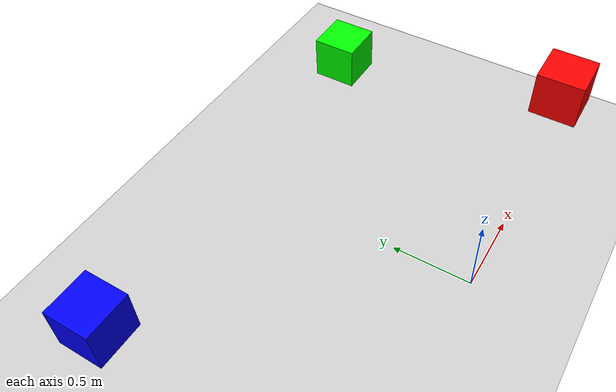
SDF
<?xml version="1.0" ?>
<sdf version='1.4'>
    <world name='default'>
    <plugin name="ros_link_attacher_plugin" filename="libgazebo_ros_link_attacher.so"/>
        <physics type='ode'>
            <max_step_size>0.001</max_step_size>
            <real_time_factor>1</real_time_factor>
            <real_time_update_rate>1000</real_time_update_rate>
            <magnetic_field>34 0 -36</magnetic_field>
            <gravity>0 0 -9.8</gravity>
        </physics>

        <spherical_coordinates>
            <surface_model>EARTH_WGS84</surface_model>
            <latitude_deg>0</latitude_deg>
            <longitude_deg>0</longitude_deg>
            <elevation>0</elevation>
            <heading_deg>0</heading_deg>
        </spherical_coordinates>

        <!-- A global light source -->
     <scene>
            <shadows>0</shadows>
            <sky>
                <clouds>
                    <speed>12</speed>
                </clouds>
            </sky>
     </scene>

     <include>
         <uri>model://sun</uri>
     </include>

        <!-- A ground plane -->
        <include>
            <uri>model://ground_plane</uri>
        </include>

        <model name="red_cube">
            <static>False</static>
            <link name="red_cube_link">
                    <pose>1.3 0 0.5 0 0 0</pose>
                    <inertial>
                            <mass>0.01</mass> <!-- Adjust this value for desired mass -->
                            <inertia>
                                    <ixx>0.01</ixx>
                                    <iyy>0.01</iyy>
                                    <izz>0.01</izz>
                            </inertia>
                    </inertial>
                    <collision name="static_box_collision">
                            <geometry>
                                    <box>
                                            <size>0.3 0.3 0.3</size>
                                    </box>
                            </geometry>
                    </collision>
                    <visual name="static_box_visual">
                            <geometry>
                                    <box>
                                            <size>0.3 0.3 0.3</size>
                                    </box>
                            </geometry>
                            <material>
                                    <ambient>1 0 0 1</ambient>
                                    <diffuse>1 0 0 1</diffuse>
                            </material>
                    </visual>
            </link>
        </model>

        <model name="green_cube">
            <static>False</static>
            <link name="green_cube_link">
                    <pose>1.3 1.6 0.15 0 0 0</pose>
                    <inertial>
                            <mass>0.01</mass> <!-- Adjust this value for desired mass -->
                            <inertia>
                                    <ixx>0.01</ixx>
                                    <iyy>0.01</iyy>
                                    <izz>0.01</izz>
                            </inertia>
                    </inertial>
                    <collision name="static_box_collision">
                            <geometry>
                                    <box>
                                            <size>0.3 0.3 0.3</size>
                                    </box>
                            </geometry>
                    </collision>
                    <visual name="static_box_visual">
                            <geometry>
                                    <box>
                                            <size>0.3 0.3 0.3</size>
                                    </box>
                            </geometry>
                            <material>
                                    <ambient>0 1 0 1</ambient>
                                    <diffuse>0 1 0 1</diffuse>
                            </material>
                    </visual>
            </link>
        </model>

        <model name="blue_cube">
            <static>False</static>
            <link name="blue_cube_link">
                    <pose>-1.3 1.6 0.15 0 0 0</pose>
                    <inertial>
                            <mass>0.01</mass> <!-- Adjust this value for desired mass -->
                            <inertia>
                                    <ixx>0.01</ixx>
                                    <iyy>0.01</iyy>
                                    <izz>0.01</izz>
                            </inertia>
                    </inertial>
                    <collision name="static_box_collision">
                            <geometry>
                                    <box>
                                            <size>0.3 0.3 0.3</size>
                                    </box>
                            </geometry>
                    </collision>
                    <visual name="static_box_visual">
                            <geometry>
                                    <box>
                                            <size>0.3 0.3 0.3</size>
                                    </box>
                            </geometry>
                            <material>
                                    <ambient>0 0 1 1</ambient>
                                    <diffuse>0 0 1 1</diffuse>
                            </material>
                    </visual>
            </link>
        </model>

    </world>
</sdf>
